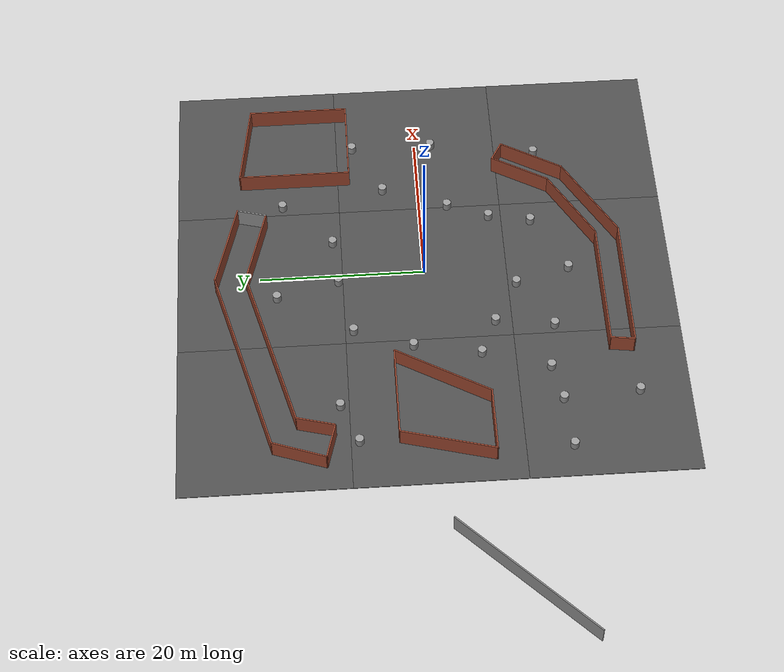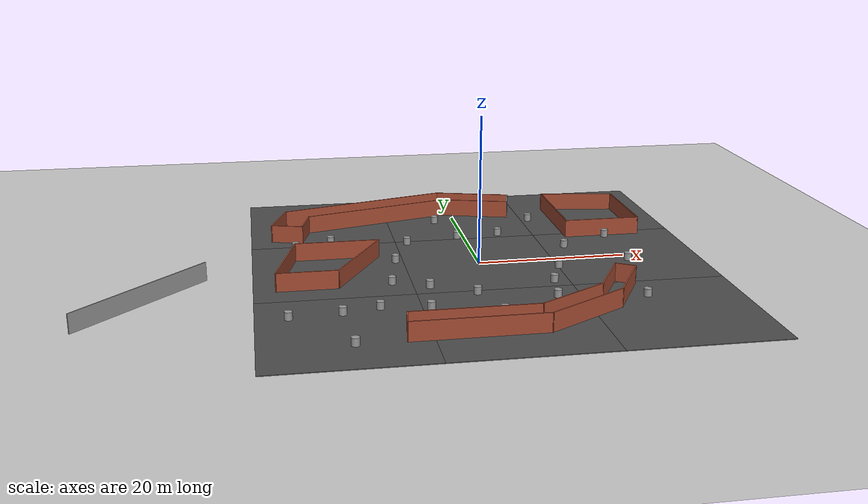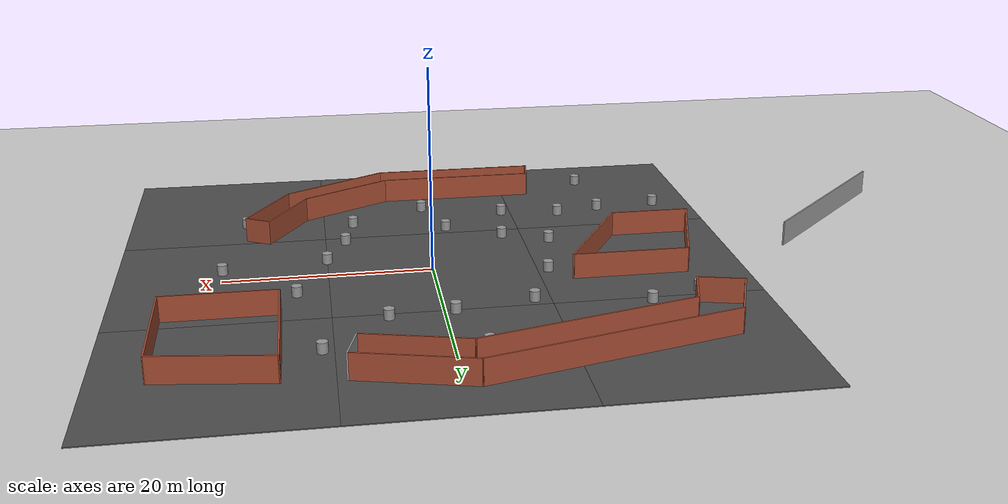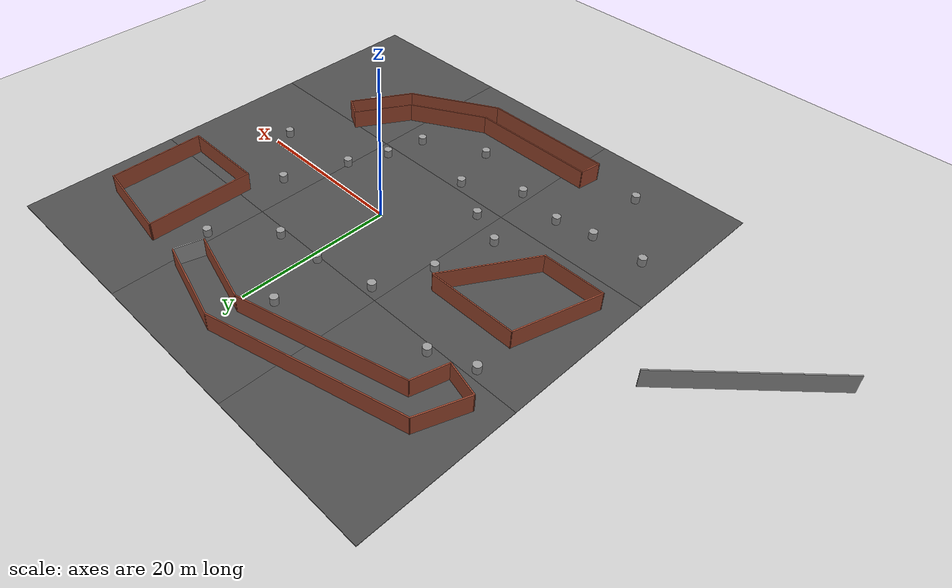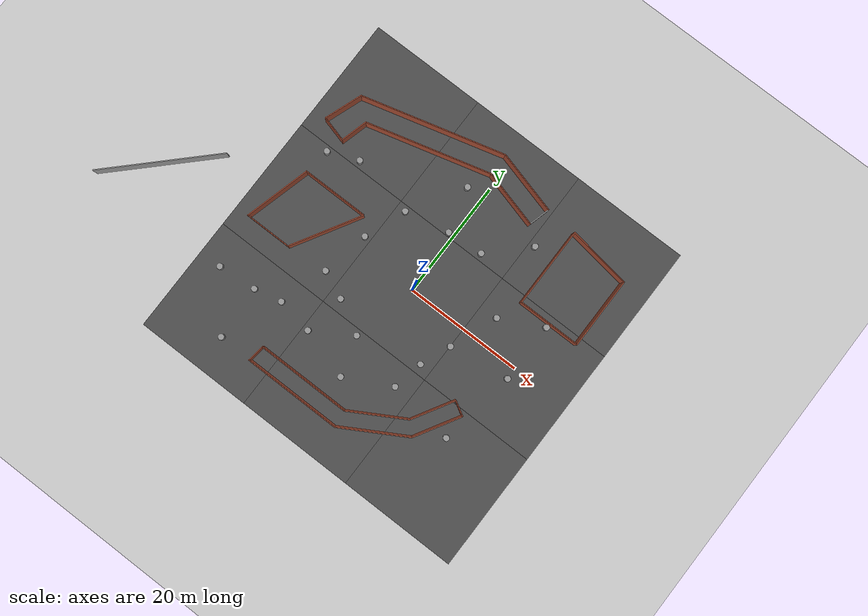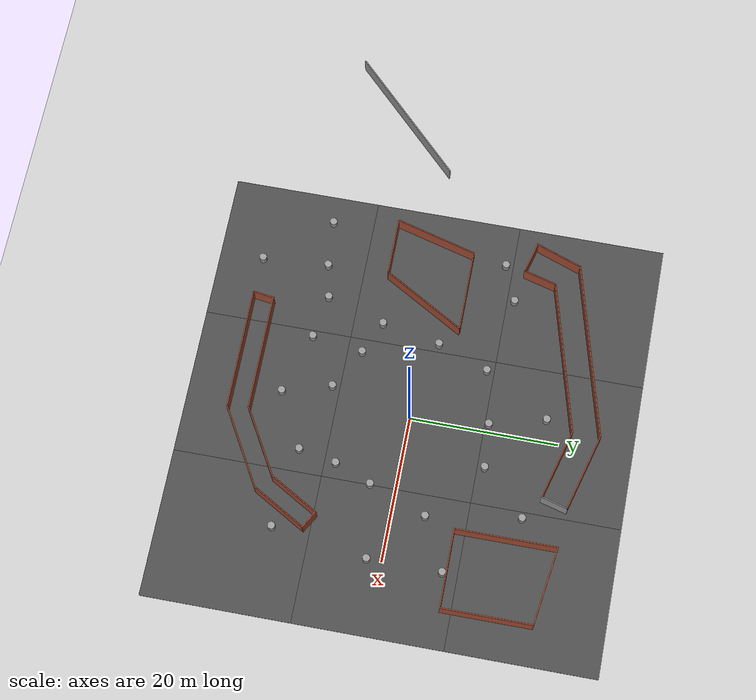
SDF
<sdf version="1.7">
 <world name="default">
  <scene><ambient>0.4 0.4 0.4 1</ambient><background>0.7 0.7 0.7 1</background><shadows>1</shadows></scene>
  <light name="sun" type="directional">
   <pose>0 0 10 0 -0 0</pose>
   <diffuse>0.8 0.8 0.8 1</diffuse>
   <specular>0.2 0.2 0.2 1</specular>
   <attenuation>
    <range>1000</range>
    <constant>0.9</constant>
    <linear>0.01</linear>
    <quadratic>0.001</quadratic>
   </attenuation>
   <direction>-0.5 0.1 -0.9</direction>
   <spot><inner_angle>0</inner_angle><outer_angle>0</outer_angle><falloff>0</falloff></spot>
  </light>
  <model name="ground_plane">
   <static>1</static>
   <link name="link">
    <collision name="collision">
     <geometry><plane><normal>0 0 1</normal><size>100 100</size></plane></geometry>
     <surface>
      <contact><collide_bitmask>65535</collide_bitmask></contact>
      <friction><ode><mu>100</mu><mu2>50</mu2></ode></friction>
     </surface>
    </collision>
    <visual name="visual">
     <cast_shadows>0</cast_shadows>
     <geometry><plane><normal>0 0 1</normal><size>100 100</size></plane></geometry>
     <material>
      <script><uri>file://media/materials/scripts/gazebo.material</uri><name>Gazebo/Grey</name></script>
     </material>
    </visual>
   </link>
  </model>
  <physics type="ode">
   <real_time_update_rate>5000</real_time_update_rate>
   <max_step_size>0.002</max_step_size>
   <real_time_factor>10</real_time_factor>
   <ode>
    <solver>
     <type>quick</type>
     <iters>150</iters>
     <precon_iters>0</precon_iters>
     <sor>1.4</sor>
     <use_dynamic_moi_rescaling>1</use_dynamic_moi_rescaling>
    </solver>
    <constraints>
     <cfm>1e-05</cfm>
     <erp>0.2</erp>
     <contact_max_correcting_vel>2000</contact_max_correcting_vel>
     <contact_surface_layer>0.01</contact_surface_layer>
    </constraints>
   </ode>
  </physics>
  <gravity>0 0 -9.8</gravity>
  <magnetic_field>6e-06 2.3e-05 -4.2e-05</magnetic_field>
  <atmosphere type="adiabatic"/>
  <spherical_coordinates>
   <surface_model>EARTH_WGS84</surface_model>
   <latitude_deg>0</latitude_deg>
   <longitude_deg>0</longitude_deg>
   <elevation>0</elevation>
   <heading_deg>0</heading_deg>
  </spherical_coordinates>
  <model name="asphalt_plane">
   <static>1</static>
   <link name="link">
    <collision name="collision"><geometry><box><size>20 20 0.1</size></box></geometry></collision>
    <visual name="visual">
     <cast_shadows>0</cast_shadows>
     <geometry><box><size>20 20 0.1</size></box></geometry>
     <material>
      <script>
       <uri>model://asphalt_plane/materials/scripts</uri>
       <uri>model://asphalt_plane/materials/textures</uri>
       <name>vrc/asphalt</name>
      </script>
     </material>
    </visual>
   </link>
  </model>
  <model name="asphalt_plane_clone">
   <static>1</static>
   <link name="link">
    <collision name="collision"><geometry><box><size>20 20 0.1</size></box></geometry></collision>
    <visual name="visual">
     <cast_shadows>0</cast_shadows>
     <geometry><box><size>20 20 0.1</size></box></geometry>
     <material>
      <script>
       <uri>model://asphalt_plane/materials/scripts</uri>
       <uri>model://asphalt_plane/materials/textures</uri>
       <name>vrc/asphalt</name>
      </script>
     </material>
    </visual>
   </link>
   <pose>20 0 0 0 -0 0</pose>
  </model>
  <model name="asphalt_plane_clone_0">
   <static>1</static>
   <link name="link">
    <collision name="collision"><geometry><box><size>20 20 0.1</size></box></geometry></collision>
    <visual name="visual">
     <cast_shadows>0</cast_shadows>
     <geometry><box><size>20 20 0.1</size></box></geometry>
     <material>
      <script>
       <uri>model://asphalt_plane/materials/scripts</uri>
       <uri>model://asphalt_plane/materials/textures</uri>
       <name>vrc/asphalt</name>
      </script>
     </material>
    </visual>
   </link>
   <pose>20 -20 0 0 -0 0</pose>
  </model>
  <model name="asphalt_plane_clone_1">
   <static>1</static>
   <link name="link">
    <collision name="collision"><geometry><box><size>20 20 0.1</size></box></geometry></collision>
    <visual name="visual">
     <cast_shadows>0</cast_shadows>
     <geometry><box><size>20 20 0.1</size></box></geometry>
     <material>
      <script>
       <uri>model://asphalt_plane/materials/scripts</uri>
       <uri>model://asphalt_plane/materials/textures</uri>
       <name>vrc/asphalt</name>
      </script>
     </material>
    </visual>
   </link>
   <pose>0 -20 0 0 -0 0</pose>
  </model>
  <model name="asphalt_plane_clone_2">
   <static>1</static>
   <link name="link">
    <collision name="collision"><geometry><box><size>20 20 0.1</size></box></geometry></collision>
    <visual name="visual">
     <cast_shadows>0</cast_shadows>
     <geometry><box><size>20 20 0.1</size></box></geometry>
     <material>
      <script>
       <uri>model://asphalt_plane/materials/scripts</uri>
       <uri>model://asphalt_plane/materials/textures</uri>
       <name>vrc/asphalt</name>
      </script>
     </material>
    </visual>
   </link>
   <pose>-20 -20 0 0 -0 0</pose>
  </model>
  <model name="asphalt_plane_clone_3">
   <static>1</static>
   <link name="link">
    <collision name="collision"><geometry><box><size>20 20 0.1</size></box></geometry></collision>
    <visual name="visual">
     <cast_shadows>0</cast_shadows>
     <geometry><box><size>20 20 0.1</size></box></geometry>
     <material>
      <script>
       <uri>model://asphalt_plane/materials/scripts</uri>
       <uri>model://asphalt_plane/materials/textures</uri>
       <name>vrc/asphalt</name>
      </script>
     </material>
    </visual>
   </link>
   <pose>-20 0 0 0 -0 0</pose>
  </model>
  <model name="asphalt_plane_clone_4">
   <static>1</static>
   <link name="link">
    <collision name="collision"><geometry><box><size>20 20 0.1</size></box></geometry></collision>
    <visual name="visual">
     <cast_shadows>0</cast_shadows>
     <geometry><box><size>20 20 0.1</size></box></geometry>
     <material>
      <script>
       <uri>model://asphalt_plane/materials/scripts</uri>
       <uri>model://asphalt_plane/materials/textures</uri>
       <name>vrc/asphalt</name>
      </script>
     </material>
    </visual>
   </link>
   <pose>-20 20 0 0 -0 0</pose>
  </model>
  <model name="asphalt_plane_clone_5">
   <static>1</static>
   <link name="link">
    <collision name="collision"><geometry><box><size>20 20 0.1</size></box></geometry></collision>
    <visual name="visual">
     <cast_shadows>0</cast_shadows>
     <geometry><box><size>20 20 0.1</size></box></geometry>
     <material>
      <script>
       <uri>model://asphalt_plane/materials/scripts</uri>
       <uri>model://asphalt_plane/materials/textures</uri>
       <name>vrc/asphalt</name>
      </script>
     </material>
    </visual>
   </link>
   <pose>0 20 0 0 -0 0</pose>
  </model>
  <model name="asphalt_plane_clone_6">
   <static>1</static>
   <link name="link">
    <collision name="collision"><geometry><box><size>20 20 0.1</size></box></geometry></collision>
    <visual name="visual">
     <cast_shadows>0</cast_shadows>
     <geometry><box><size>20 20 0.1</size></box></geometry>
     <material>
      <script>
       <uri>model://asphalt_plane/materials/scripts</uri>
       <uri>model://asphalt_plane/materials/textures</uri>
       <name>vrc/asphalt</name>
      </script>
     </material>
    </visual>
   </link>
   <pose>20 20 0 0 -0 0</pose>
  </model>
  <light name="user_directional_light_0" type="directional">
   <pose>0 0 1 0 -0 0</pose>
   <diffuse>0.5 0.5 0.5 1</diffuse>
   <specular>0.1 0.1 0.1 1</specular>
   <direction>0.1 0.1 -0.9</direction>
   <attenuation>
    <range>20</range>
    <constant>0.5</constant>
    <linear>0.01</linear>
    <quadratic>0.001</quadratic>
   </attenuation>
   <spot><inner_angle>0</inner_angle><outer_angle>0</outer_angle><falloff>0</falloff></spot>
  </light>
  <model name="wall">
   <pose>-12.7819 0.65895 0 0 -0 0</pose>
   <link name="Wall_12">
    <collision name="Wall_12_Collision">
     <geometry><box><size>16.75 0.15 2.5</size></box></geometry>
     <pose>0 0 1.25 0 -0 0</pose>
    </collision>
    <visual name="Wall_12_Visual">
     <pose>0 0 1.25 0 -0 0</pose>
     <geometry><box><size>16.75 0.15 2.5</size></box></geometry>
     <material>
      <script><uri>file://media/materials/scripts/gazebo.material</uri><name>Gazebo/Bricks</name></script>
      <ambient>1 1 1 1</ambient>
     </material>
     <meta><layer>0</layer></meta>
    </visual>
    <pose>7.88361 -24.6458 0 0 -0 0</pose>
   </link>
   <link name="Wall_13">
    <collision name="Wall_13_Collision">
     <geometry><box><size>12 0.15 2.5</size></box></geometry>
     <pose>0 0 1.25 0 -0 0</pose>
    </collision>
    <visual name="Wall_13_Visual">
     <pose>0 0 1.25 0 -0 0</pose>
     <geometry><box><size>12 0.15 2.5</size></box></geometry>
     <material>
      <script><uri>file://media/materials/scripts/gazebo.material</uri><name>Gazebo/Bricks</name></script>
      <ambient>1 1 1 1</ambient>
     </material>
     <meta><layer>0</layer></meta>
    </visual>
    <pose>21.3148 -21.6833 0 0 -0 0.523599</pose>
   </link>
   <link name="Wall_14">
    <collision name="Wall_14_Collision">
     <geometry><box><size>8.5 0.15 2.5</size></box></geometry>
     <pose>0 0 1.25 0 -0 0</pose>
    </collision>
    <visual name="Wall_14_Visual">
     <pose>0 0 1.25 0 -0 0</pose>
     <geometry><box><size>8.5 0.15 2.5</size></box></geometry>
     <material>
      <script><uri>file://media/materials/scripts/gazebo.material</uri><name>Gazebo/Bricks</name></script>
      <ambient>1 1 1 1</ambient>
     </material>
     <meta><layer>0</layer></meta>
    </visual>
    <pose>28.5335 -15.1052 0 0 -0 1.0472</pose>
   </link>
   <link name="Wall_15">
    <collision name="Wall_15_Collision">
     <geometry><box><size>2.75 0.15 2.5</size></box></geometry>
     <pose>0 0 1.25 0 -0 0</pose>
    </collision>
    <visual name="Wall_15_Visual">
     <pose>0 0 1.25 0 -0 0</pose>
     <geometry><box><size>2.75 0.15 2.5</size></box></geometry>
     <material>
      <script><uri>file://media/materials/scripts/gazebo.material</uri><name>Gazebo/Bricks</name></script>
      <ambient>1 1 1 1</ambient>
     </material>
     <meta><layer>0</layer></meta>
    </visual>
    <pose>29.4952 -10.8395 0 0 -0 2.61799</pose>
   </link>
   <link name="Wall_16">
    <collision name="Wall_16_Collision">
     <geometry><box><size>7.75 0.15 2.5</size></box></geometry>
     <pose>0 0 1.25 0 -0 0</pose>
    </collision>
    <visual name="Wall_16_Visual">
     <pose>0 0 1.25 0 -0 0</pose>
     <geometry><box><size>7.75 0.15 2.5</size></box></geometry>
     <material>
      <script><uri>file://media/materials/scripts/gazebo.material</uri><name>Gazebo/Bricks</name></script>
      <ambient>1 1 1 1</ambient>
     </material>
     <meta><layer>0</layer></meta>
    </visual>
    <pose>26.4693 -13.4804 0 0 -0 -2.0944</pose>
   </link>
   <link name="Wall_17">
    <collision name="Wall_17_Collision">
     <geometry><box><size>10.25 0.15 2.5</size></box></geometry>
     <pose>0 0 1.25 0 -0 0</pose>
    </collision>
    <visual name="Wall_17_Visual">
     <pose>0 0 1.25 0 -0 0</pose>
     <geometry><box><size>10.25 0.15 2.5</size></box></geometry>
     <material>
      <script><uri>file://media/materials/scripts/gazebo.material</uri><name>Gazebo/Bricks</name></script>
      <ambient>1 1 1 1</ambient>
     </material>
     <meta><layer>0</layer></meta>
    </visual>
    <pose>20.1959 -19.2963 0 0 -0 -2.61799</pose>
   </link>
   <link name="Wall_18">
    <collision name="Wall_18_Collision">
     <geometry><box><size>16 0.15 2.5</size></box></geometry>
     <pose>0 0 1.25 0 -0 0</pose>
    </collision>
    <visual name="Wall_18_Visual">
     <pose>0 0 1.25 0 -0 0</pose>
     <geometry><box><size>16 0.15 2.5</size></box></geometry>
     <material>
      <script><uri>file://media/materials/scripts/gazebo.material</uri><name>Gazebo/Bricks</name></script>
      <ambient>1 1 1 1</ambient>
     </material>
     <meta><layer>0</layer></meta>
    </visual>
    <pose>7.89749 -21.8213 0 0 -0 3.14159</pose>
   </link>
   <link name="Wall_19">
    <collision name="Wall_19_Collision">
     <geometry><box><size>3.00116 0.15 2.5</size></box></geometry>
     <pose>0 0 1.25 0 -0 0</pose>
    </collision>
    <visual name="Wall_19_Visual">
     <pose>0 0 1.25 0 -0 0</pose>
     <geometry><box><size>3.00116 0.15 2.5</size></box></geometry>
     <material>
      <script><uri>file://media/materials/scripts/gazebo.material</uri><name>Gazebo/Bricks</name></script>
      <ambient>1 1 1 1</ambient>
     </material>
     <meta><layer>0</layer></meta>
    </visual>
    <pose>-0.221951 -23.2336 0 0 -0 -1.70762</pose>
   </link>
   <link name="Wall_21">
    <collision name="Wall_21_Collision">
     <geometry><box><size>13.75 0.15 2.5</size></box></geometry>
     <pose>0 0 1.25 0 -0 0</pose>
    </collision>
    <visual name="Wall_21_Visual">
     <pose>0 0 1.25 0 -0 0</pose>
     <geometry><box><size>13.75 0.15 2.5</size></box></geometry>
     <material>
      <script><uri>file://media/materials/scripts/gazebo.material</uri><name>Gazebo/Bricks</name></script>
      <ambient>1 1 1 1</ambient>
     </material>
     <meta><layer>0</layer></meta>
    </visual>
    <pose>27.2512 14.7033 0 0 -0 -1.5708</pose>
   </link>
   <link name="Wall_22">
    <collision name="Wall_22_Collision">
     <geometry><box><size>10.75 0.15 2.5</size></box></geometry>
     <pose>0 0 1.25 0 -0 0</pose>
    </collision>
    <visual name="Wall_22_Visual">
     <pose>0 0 1.25 0 -0 0</pose>
     <geometry><box><size>10.75 0.15 2.5</size></box></geometry>
     <material>
      <script><uri>file://media/materials/scripts/gazebo.material</uri><name>Gazebo/Bricks</name></script>
      <ambient>1 1 1 1</ambient>
     </material>
     <meta><layer>0</layer></meta>
    </visual>
    <pose>32.5512 7.90329 0 0 -0 0</pose>
   </link>
   <link name="Wall_23">
    <collision name="Wall_23_Collision">
     <geometry><box><size>12.25 0.15 2.5</size></box></geometry>
     <pose>0 0 1.25 0 -0 0</pose>
    </collision>
    <visual name="Wall_23_Visual">
     <pose>0 0 1.25 0 -0 0</pose>
     <geometry><box><size>12.25 0.15 2.5</size></box></geometry>
     <material>
      <script><uri>file://media/materials/scripts/gazebo.material</uri><name>Gazebo/Bricks</name></script>
      <ambient>1 1 1 1</ambient>
     </material>
     <meta><layer>0</layer></meta>
    </visual>
    <pose>37.8512 13.9533 0 0 -0 1.5708</pose>
   </link>
   <link name="Wall_24">
    <collision name="Wall_24_Collision">
     <geometry><box><size>10.8556 0.15 2.5</size></box></geometry>
     <pose>0 0 1.25 0 -0 0</pose>
    </collision>
    <visual name="Wall_24_Visual">
     <pose>0 0 1.25 0 -0 0</pose>
     <geometry><box><size>10.8556 0.15 2.5</size></box></geometry>
     <material>
      <script><uri>file://media/materials/scripts/gazebo.material</uri><name>Gazebo/Bricks</name></script>
      <ambient>1 1 1 1</ambient>
     </material>
     <meta><layer>0</layer></meta>
    </visual>
    <pose>32.5512 20.7533 0 0 -0 3.00102</pose>
   </link>
   <link name="Wall_26">
    <collision name="Wall_26_Collision">
     <geometry><box><size>24.5 0.15 2.5</size></box></geometry>
     <pose>0 0 1.25 0 -0 0</pose>
    </collision>
    <visual name="Wall_26_Visual">
     <pose>0 0 1.25 0 -0 0</pose>
     <geometry><box><size>24.5 0.15 2.5</size></box></geometry>
     <material>
      <script><uri>file://media/materials/scripts/gazebo.material</uri><name>Gazebo/Bricks</name></script>
      <ambient>1 1 1 1</ambient>
     </material>
     <meta><layer>0</layer></meta>
    </visual>
    <pose>-0.332914 21.5053 0 0 -0 0.261799</pose>
   </link>
   <link name="Wall_27">
    <collision name="Wall_27_Collision">
     <geometry><box><size>11 0.15 2.5</size></box></geometry>
     <pose>0 0 1.25 0 -0 0</pose>
    </collision>
    <visual name="Wall_27_Visual">
     <pose>0 0 1.25 0 -0 0</pose>
     <geometry><box><size>11 0.15 2.5</size></box></geometry>
     <material>
      <script><uri>file://media/materials/scripts/gazebo.material</uri><name>Gazebo/Bricks</name></script>
      <ambient>1 1 1 1</ambient>
     </material>
     <meta><layer>0</layer></meta>
    </visual>
    <pose>16.6674 23.2523 0 0 -0 -0.261799</pose>
   </link>
   <link name="Wall_28">
    <collision name="Wall_28_Collision">
     <geometry><box><size>3.75 0.15 2.5</size></box></geometry>
     <pose>0 0 1.25 0 -0 0</pose>
    </collision>
    <visual name="Wall_28_Visual">
     <pose>0 0 1.25 0 -0 0</pose>
     <geometry><box><size>3.75 0.15 2.5</size></box></geometry>
     <material>
      <script><uri>file://media/materials/scripts/gazebo.material</uri><name>Gazebo/Grey</name></script>
      <ambient>1 1 1 1</ambient>
     </material>
     <meta><layer>0</layer></meta>
    </visual>
    <pose>21.4417 20.1096 0 0 -0 -1.8326</pose>
   </link>
   <link name="Wall_29">
    <collision name="Wall_29_Collision">
     <geometry><box><size>10 0.15 2.5</size></box></geometry>
     <pose>0 0 1.25 0 -0 0</pose>
    </collision>
    <visual name="Wall_29_Visual">
     <pose>0 0 1.25 0 -0 0</pose>
     <geometry><box><size>10 0.15 2.5</size></box></geometry>
     <material>
      <script><uri>file://media/materials/scripts/gazebo.material</uri><name>Gazebo/Bricks</name></script>
      <ambient>1 1 1 1</ambient>
     </material>
     <meta><layer>0</layer></meta>
    </visual>
    <pose>16.2186 19.6456 0 0 -0 2.87979</pose>
   </link>
   <link name="Wall_3">
    <collision name="Wall_3_Collision">
     <geometry><box><size>21 0.15 2.5</size></box></geometry>
     <pose>0 0 1.25 0 -0 0</pose>
    </collision>
    <visual name="Wall_3_Visual">
     <pose>0 0 1.25 0 -0 0</pose>
     <geometry><box><size>21 0.15 2.5</size></box></geometry>
     <material>
      <script><uri>file://media/materials/scripts/gazebo.material</uri><name>Gazebo/Grey</name></script>
      <ambient>1 1 1 1</ambient>
     </material>
     <meta><layer>0</layer></meta>
    </visual>
    <pose>-30.4583 -9.04637 0 0 -0 0.785398</pose>
   </link>
   <link name="Wall_30">
    <collision name="Wall_30_Collision">
     <geometry><box><size>21.25 0.15 2.5</size></box></geometry>
     <pose>0 0 1.25 0 -0 0</pose>
    </collision>
    <visual name="Wall_30_Visual">
     <pose>0 0 1.25 0 -0 0</pose>
     <geometry><box><size>21.25 0.15 2.5</size></box></geometry>
     <material>
      <script><uri>file://media/materials/scripts/gazebo.material</uri><name>Gazebo/Bricks</name></script>
      <ambient>1 1 1 1</ambient>
     </material>
     <meta><layer>0</layer></meta>
    </visual>
    <pose>1.27089 18.1897 0 0 -0 -2.87979</pose>
   </link>
   <link name="Wall_31">
    <collision name="Wall_31_Collision">
     <geometry><box><size>4.75 0.15 2.5</size></box></geometry>
     <pose>0 0 1.25 0 -0 0</pose>
    </collision>
    <visual name="Wall_31_Visual">
     <pose>0 0 1.25 0 -0 0</pose>
     <geometry><box><size>4.75 0.15 2.5</size></box></geometry>
     <material>
      <script><uri>file://media/materials/scripts/gazebo.material</uri><name>Gazebo/Bricks</name></script>
      <ambient>1 1 1 1</ambient>
     </material>
     <meta><layer>0</layer></meta>
    </visual>
    <pose>-9.51491 13.2375 0 0 -0 -1.8326</pose>
   </link>
   <link name="Wall_32">
    <collision name="Wall_32_Collision">
     <geometry><box><size>4.5 0.15 2.5</size></box></geometry>
     <pose>0 0 1.25 0 -0 0</pose>
    </collision>
    <visual name="Wall_32_Visual">
     <pose>0 0 1.25 0 -0 0</pose>
     <geometry><box><size>4.5 0.15 2.5</size></box></geometry>
     <material>
      <script><uri>file://media/materials/scripts/gazebo.material</uri><name>Gazebo/Bricks</name></script>
      <ambient>1 1 1 1</ambient>
     </material>
     <meta><layer>0</layer></meta>
    </visual>
    <pose>-12.2111 11.5788 0 0 -0 2.87979</pose>
   </link>
   <link name="Wall_33">
    <collision name="Wall_33_Collision">
     <geometry><box><size>6.74676 0.15 2.5</size></box></geometry>
     <pose>0 0 1.25 0 -0 0</pose>
    </collision>
    <visual name="Wall_33_Visual">
     <pose>0 0 1.25 0 -0 0</pose>
     <geometry><box><size>6.74676 0.15 2.5</size></box></geometry>
     <material>
      <script><uri>file://media/materials/scripts/gazebo.material</uri><name>Gazebo/Bricks</name></script>
      <ambient>1 1 1 1</ambient>
     </material>
     <meta><layer>0</layer></meta>
    </visual>
    <pose>-13.2025 15.248 0 0 -0 1.22774</pose>
   </link>
   <link name="Wall_5">
    <collision name="Wall_5_Collision">
     <geometry><box><size>12.75 0.15 2.5</size></box></geometry>
     <pose>0 0 1.25 0 -0 0</pose>
    </collision>
    <visual name="Wall_5_Visual">
     <pose>0 0 1.25 0 -0 0</pose>
     <geometry><box><size>12.75 0.15 2.5</size></box></geometry>
     <material>
      <script><uri>file://media/materials/scripts/gazebo.material</uri><name>Gazebo/Bricks</name></script>
      <ambient>1 1 1 1</ambient>
     </material>
     <meta><layer>0</layer></meta>
    </visual>
    <pose>-3.38723 -1.77271 0 0 -0 -2.0944</pose>
   </link>
   <link name="Wall_6">
    <collision name="Wall_6_Collision">
     <geometry><box><size>8 0.15 2.5</size></box></geometry>
     <pose>0 0 1.25 0 -0 0</pose>
    </collision>
    <visual name="Wall_6_Visual">
     <pose>0 0 1.25 0 -0 0</pose>
     <geometry><box><size>8 0.15 2.5</size></box></geometry>
     <material>
      <script><uri>file://media/materials/scripts/gazebo.material</uri><name>Gazebo/Bricks</name></script>
      <ambient>1 1 1 1</ambient>
     </material>
     <meta><layer>0</layer></meta>
    </visual>
    <pose>-10.4622 -7.22867 0 0 -0 3.14159</pose>
   </link>
   <link name="Wall_7">
    <collision name="Wall_7_Collision">
     <geometry><box><size>11.5 0.15 2.5</size></box></geometry>
     <pose>0 0 1.25 0 -0 0</pose>
    </collision>
    <visual name="Wall_7_Visual">
     <pose>0 0 1.25 0 -0 0</pose>
     <geometry><box><size>11.5 0.15 2.5</size></box></geometry>
     <material>
      <script><uri>file://media/materials/scripts/gazebo.material</uri><name>Gazebo/Bricks</name></script>
      <ambient>1 1 1 1</ambient>
     </material>
     <meta><layer>0</layer></meta>
    </visual>
    <pose>-12.9184 -1.74704 0 0 -0 1.309</pose>
   </link>
   <link name="Wall_8">
    <collision name="Wall_8_Collision">
     <geometry><box><size>11.25 0.15 2.5</size></box></geometry>
     <pose>0 0 1.25 0 -0 0</pose>
    </collision>
    <visual name="Wall_8_Visual">
     <pose>0 0 1.25 0 -0 0</pose>
     <geometry><box><size>11.25 0.15 2.5</size></box></geometry>
     <material>
      <script><uri>file://media/materials/scripts/gazebo.material</uri><name>Gazebo/Bricks</name></script>
      <ambient>1 1 1 1</ambient>
     </material>
     <meta><layer>0</layer></meta>
    </visual>
    <pose>-5.89963 3.73459 0 0 -0 0</pose>
   </link>
   <static>1</static>
  </model>
  <model name="unit_cylinder">
   <pose>-12.5409 -6 0.55 0 -0 0</pose>
   <link name="link">
    <inertial>
     <mass>1</mass>
     <inertia><ixx>0.145833</ixx><ixy>0</ixy><ixz>0</ixz><iyy>0.145833</iyy><iyz>0</iyz><izz>0.125</izz></inertia>
    </inertial>
    <collision name="collision">
     <geometry><cylinder><radius>0.5</radius><length>1</length></cylinder></geometry>
    </collision>
    <visual name="visual">
     <geometry><cylinder><radius>0.5</radius><length>1</length></cylinder></geometry>
     <material>
      <script><name>Gazebo/Grey</name><uri>file://media/materials/scripts/gazebo.material</uri></script>
     </material>
    </visual>
   </link>
  </model>
  <model name="unit_cylinder_clone">
   <pose>-9 -15 0.55 0 -0 0</pose>
   <link name="link">
    <inertial>
     <mass>1</mass>
     <inertia><ixx>0.145833</ixx><ixy>0</ixy><ixz>0</ixz><iyy>0.145833</iyy><iyz>0</iyz><izz>0.125</izz></inertia>
    </inertial>
    <collision name="collision">
     <geometry><cylinder><radius>0.5</radius><length>1</length></cylinder></geometry>
    </collision>
    <visual name="visual">
     <geometry><cylinder><radius>0.5</radius><length>1</length></cylinder></geometry>
     <material>
      <script><name>Gazebo/Grey</name><uri>file://media/materials/scripts/gazebo.material</uri></script>
     </material>
    </visual>
   </link>
  </model>
  <model name="unit_cylinder_clone_0">
   <pose>-19.5921 -15 0.549961 0 -0 0</pose>
   <link name="link">
    <inertial>
     <mass>1</mass>
     <inertia><ixx>0.145833</ixx><ixy>0</ixy><ixz>0</ixz><iyy>0.145833</iyy><iyz>0</iyz><izz>0.125</izz></inertia>
    </inertial>
    <collision name="collision">
     <geometry><cylinder><radius>0.5</radius><length>1</length></cylinder></geometry>
    </collision>
    <visual name="visual">
     <geometry><cylinder><radius>0.5</radius><length>1</length></cylinder></geometry>
     <material>
      <script><name>Gazebo/Grey</name><uri>file://media/materials/scripts/gazebo.material</uri></script>
     </material>
    </visual>
   </link>
  </model>
  <model name="unit_cylinder_clone_1">
   <pose>7.00007 -13.5939 0.549993 7e-06 2.3e-05 0</pose>
   <link name="link">
    <inertial>
     <mass>1</mass>
     <inertia><ixx>0.145833</ixx><ixy>0</ixy><ixz>0</ixz><iyy>0.145833</iyy><iyz>0</iyz><izz>0.125</izz></inertia>
    </inertial>
    <collision name="collision">
     <geometry><cylinder><radius>0.5</radius><length>1</length></cylinder></geometry>
    </collision>
    <visual name="visual">
     <geometry><cylinder><radius>0.5</radius><length>1</length></cylinder></geometry>
     <material>
      <script><name>Gazebo/Grey</name><uri>file://media/materials/scripts/gazebo.material</uri></script>
     </material>
    </visual>
   </link>
  </model>
  <model name="unit_cylinder_clone_2">
   <pose>10 -3.44642 0.549984 8e-06 -1e-06 -0</pose>
   <link name="link">
    <inertial>
     <mass>1</mass>
     <inertia><ixx>0.145833</ixx><ixy>0</ixy><ixz>0</ixz><iyy>0.145833</iyy><iyz>0</iyz><izz>0.125</izz></inertia>
    </inertial>
    <collision name="collision">
     <geometry><cylinder><radius>0.5</radius><length>1</length></cylinder></geometry>
    </collision>
    <visual name="visual">
     <geometry><cylinder><radius>0.5</radius><length>1</length></cylinder></geometry>
     <material>
      <script><name>Gazebo/Grey</name><uri>file://media/materials/scripts/gazebo.material</uri></script>
     </material>
    </visual>
   </link>
  </model>
  <model name="unit_cylinder_clone_3">
   <pose>-2.5216 -11 0.549961 0 -0 0</pose>
   <link name="link">
    <inertial>
     <mass>1</mass>
     <inertia><ixx>0.145833</ixx><ixy>0</ixy><ixz>0</ixz><iyy>0.145833</iyy><iyz>0</iyz><izz>0.125</izz></inertia>
    </inertial>
    <collision name="collision">
     <geometry><cylinder><radius>0.5</radius><length>1</length></cylinder></geometry>
    </collision>
    <visual name="visual">
     <geometry><cylinder><radius>0.5</radius><length>1</length></cylinder></geometry>
     <material>
      <script><name>Gazebo/Grey</name><uri>file://media/materials/scripts/gazebo.material</uri></script>
     </material>
    </visual>
   </link>
  </model>
  <model name="unit_cylinder_clone_4">
   <pose>-8.43587 9.00006 0.550004 -2e-06 -7e-06 0.00046</pose>
   <link name="link">
    <inertial>
     <mass>1</mass>
     <inertia><ixx>0.145833</ixx><ixy>0</ixy><ixz>0</ixz><iyy>0.145833</iyy><iyz>0</iyz><izz>0.125</izz></inertia>
    </inertial>
    <collision name="collision">
     <geometry><cylinder><radius>0.5</radius><length>1</length></cylinder></geometry>
    </collision>
    <visual name="visual">
     <geometry><cylinder><radius>0.5</radius><length>1</length></cylinder></geometry>
     <material>
      <script><name>Gazebo/Grey</name><uri>file://media/materials/scripts/gazebo.material</uri></script>
     </material>
    </visual>
   </link>
  </model>
  <model name="unit_cylinder_clone_5">
   <pose>4.99994 11 0.549998 3.3e-05 1.3e-05 -0.000154</pose>
   <link name="link">
    <inertial>
     <mass>1</mass>
     <inertia><ixx>0.145833</ixx><ixy>0</ixy><ixz>0</ixz><iyy>0.145833</iyy><iyz>0</iyz><izz>0.125</izz></inertia>
    </inertial>
    <collision name="collision">
     <geometry><cylinder><radius>0.5</radius><length>1</length></cylinder></geometry>
    </collision>
    <visual name="visual">
     <geometry><cylinder><radius>0.5</radius><length>1</length></cylinder></geometry>
     <material>
      <script><name>Gazebo/Grey</name><uri>file://media/materials/scripts/gazebo.material</uri></script>
     </material>
    </visual>
   </link>
  </model>
  <model name="unit_cylinder_clone_6">
   <pose>20 7.98724 0.549993 3e-06 2.6e-05 -2.3e-05</pose>
   <link name="link">
    <inertial>
     <mass>1</mass>
     <inertia><ixx>0.145833</ixx><ixy>0</ixy><ixz>0</ixz><iyy>0.145833</iyy><iyz>0</iyz><izz>0.125</izz></inertia>
    </inertial>
    <collision name="collision">
     <geometry><cylinder><radius>0.5</radius><length>1</length></cylinder></geometry>
    </collision>
    <visual name="visual">
     <geometry><cylinder><radius>0.5</radius><length>1</length></cylinder></geometry>
     <material>
      <script><name>Gazebo/Grey</name><uri>file://media/materials/scripts/gazebo.material</uri></script>
     </material>
    </visual>
   </link>
  </model>
  <model name="unit_cylinder_clone_7">
   <pose>20 -1.99999 0.550017 -1.1e-05 -3.2e-05 0.00023</pose>
   <link name="link">
    <inertial>
     <mass>1</mass>
     <inertia><ixx>0.145833</ixx><ixy>0</ixy><ixz>0</ixz><iyy>0.145833</iyy><iyz>0</iyz><izz>0.125</izz></inertia>
    </inertial>
    <collision name="collision">
     <geometry><cylinder><radius>0.5</radius><length>1</length></cylinder></geometry>
    </collision>
    <visual name="visual">
     <geometry><cylinder><radius>0.5</radius><length>1</length></cylinder></geometry>
     <material>
      <script><name>Gazebo/Grey</name><uri>file://media/materials/scripts/gazebo.material</uri></script>
     </material>
    </visual>
   </link>
  </model>
  <model name="unit_cylinder_clone_8">
   <pose>18 -15 0.55 0 -0 0</pose>
   <link name="link">
    <inertial>
     <mass>1</mass>
     <inertia><ixx>0.145833</ixx><ixy>0</ixy><ixz>0</ixz><iyy>0.145833</iyy><iyz>0</iyz><izz>0.125</izz></inertia>
    </inertial>
    <collision name="collision">
     <geometry><cylinder><radius>0.5</radius><length>1</length></cylinder></geometry>
    </collision>
    <visual name="visual">
     <geometry><cylinder><radius>0.5</radius><length>1</length></cylinder></geometry>
     <material>
      <script><name>Gazebo/Grey</name><uri>file://media/materials/scripts/gazebo.material</uri></script>
     </material>
    </visual>
   </link>
  </model>
  <model name="unit_cylinder_clone_9">
   <pose>13 4.45431 0.549995 2.7e-05 -1.3e-05 -5e-06</pose>
   <link name="link">
    <inertial>
     <mass>1</mass>
     <inertia><ixx>0.145833</ixx><ixy>0</ixy><ixz>0</ixz><iyy>0.145833</iyy><iyz>0</iyz><izz>0.125</izz></inertia>
    </inertial>
    <collision name="collision">
     <geometry><cylinder><radius>0.5</radius><length>1</length></cylinder></geometry>
    </collision>
    <visual name="visual">
     <geometry><cylinder><radius>0.5</radius><length>1</length></cylinder></geometry>
     <material>
      <script><name>Gazebo/Grey</name><uri>file://media/materials/scripts/gazebo.material</uri></script>
     </material>
    </visual>
   </link>
  </model>
  <model name="unit_cylinder_clone_10">
   <pose>-2.99995 18.0001 0.549985 -2.9e-05 -9e-06 4.1e-05</pose>
   <link name="link">
    <inertial>
     <mass>1</mass>
     <inertia><ixx>0.145833</ixx><ixy>0</ixy><ixz>0</ixz><iyy>0.145833</iyy><iyz>0</iyz><izz>0.125</izz></inertia>
    </inertial>
    <collision name="collision">
     <geometry><cylinder><radius>0.5</radius><length>1</length></cylinder></geometry>
    </collision>
    <visual name="visual">
     <geometry><cylinder><radius>0.5</radius><length>1</length></cylinder></geometry>
     <material>
      <script><name>Gazebo/Grey</name><uri>file://media/materials/scripts/gazebo.material</uri></script>
     </material>
    </visual>
   </link>
  </model>
  <model name="unit_cylinder_clone_11">
   <pose>11 17 0.549999 1.4e-05 3.4e-05 3.3e-05</pose>
   <link name="link">
    <inertial>
     <mass>1</mass>
     <inertia><ixx>0.145833</ixx><ixy>0</ixy><ixz>0</ixz><iyy>0.145833</iyy><iyz>0</iyz><izz>0.125</izz></inertia>
    </inertial>
    <collision name="collision">
     <geometry><cylinder><radius>0.5</radius><length>1</length></cylinder></geometry>
    </collision>
    <visual name="visual">
     <geometry><cylinder><radius>0.5</radius><length>1</length></cylinder></geometry>
     <material>
      <script><name>Gazebo/Grey</name><uri>file://media/materials/scripts/gazebo.material</uri></script>
     </material>
    </visual>
   </link>
  </model>
  <model name="unit_cylinder_clone_12">
   <pose>-19 11 0.549996 3e-05 6e-06 -3e-06</pose>
   <link name="link">
    <inertial>
     <mass>1</mass>
     <inertia><ixx>0.145833</ixx><ixy>0</ixy><ixz>0</ixz><iyy>0.145833</iyy><iyz>0</iyz><izz>0.125</izz></inertia>
    </inertial>
    <collision name="collision">
     <geometry><cylinder><radius>0.5</radius><length>1</length></cylinder></geometry>
    </collision>
    <visual name="visual">
     <geometry><cylinder><radius>0.5</radius><length>1</length></cylinder></geometry>
     <material>
      <script><name>Gazebo/Grey</name><uri>file://media/materials/scripts/gazebo.material</uri></script>
     </material>
    </visual>
   </link>
  </model>
  <model name="unit_cylinder_clone_13">
   <pose>-15 -14 0.549967 -3e-06 -1.2e-05 4.3e-05</pose>
   <link name="link">
    <inertial>
     <mass>1</mass>
     <inertia><ixx>0.145833</ixx><ixy>0</ixy><ixz>0</ixz><iyy>0.145833</iyy><iyz>0</iyz><izz>0.125</izz></inertia>
    </inertial>
    <collision name="collision">
     <geometry><cylinder><radius>0.5</radius><length>1</length></cylinder></geometry>
    </collision>
    <visual name="visual">
     <geometry><cylinder><radius>0.5</radius><length>1</length></cylinder></geometry>
     <material>
      <script><name>Gazebo/Grey</name><uri>file://media/materials/scripts/gazebo.material</uri></script>
     </material>
    </visual>
   </link>
  </model>
  <model name="unit_cylinder_clone_14">
   <pose>-11 2.00001 0.550005 -9e-06 -3e-06 -9.1e-05</pose>
   <link name="link">
    <inertial>
     <mass>1</mass>
     <inertia><ixx>0.145833</ixx><ixy>0</ixy><ixz>0</ixz><iyy>0.145833</iyy><iyz>0</iyz><izz>0.125</izz></inertia>
    </inertial>
    <collision name="collision">
     <geometry><cylinder><radius>0.5</radius><length>1</length></cylinder></geometry>
    </collision>
    <visual name="visual">
     <geometry><cylinder><radius>0.5</radius><length>1</length></cylinder></geometry>
     <material>
      <script><name>Gazebo/Grey</name><uri>file://media/materials/scripts/gazebo.material</uri></script>
     </material>
    </visual>
   </link>
  </model>
  <model name="unit_cylinder_clone_15">
   <pose>-0.584397 -17.5317 0.549961 -0 -0 -1.8e-05</pose>
   <link name="link">
    <inertial>
     <mass>1</mass>
     <inertia><ixx>0.145833</ixx><ixy>0</ixy><ixz>0</ixz><iyy>0.145833</iyy><iyz>0</iyz><izz>0.125</izz></inertia>
    </inertial>
    <collision name="collision">
     <geometry><cylinder><radius>0.5</radius><length>1</length></cylinder></geometry>
    </collision>
    <visual name="visual">
     <geometry><cylinder><radius>0.5</radius><length>1</length></cylinder></geometry>
     <material>
      <script><name>Gazebo/Grey</name><uri>file://media/materials/scripts/gazebo.material</uri></script>
     </material>
    </visual>
   </link>
  </model>
  <model name="unit_cylinder_clone_16">
   <pose>-19 -24 0.55 0 -0 0</pose>
   <link name="link">
    <inertial>
     <mass>1</mass>
     <inertia><ixx>0.145833</ixx><ixy>0</ixy><ixz>0</ixz><iyy>0.145833</iyy><iyz>0</iyz><izz>0.125</izz></inertia>
    </inertial>
    <collision name="collision">
     <geometry><cylinder><radius>0.5</radius><length>1</length></cylinder></geometry>
    </collision>
    <visual name="visual">
     <geometry><cylinder><radius>0.5</radius><length>1</length></cylinder></geometry>
     <material>
      <script><name>Gazebo/Grey</name><uri>file://media/materials/scripts/gazebo.material</uri></script>
     </material>
    </visual>
   </link>
  </model>
  <model name="unit_cylinder_clone_17">
   <pose>-26 -15.5329 0.549961 0 -0 0</pose>
   <link name="link">
    <inertial>
     <mass>1</mass>
     <inertia><ixx>0.145833</ixx><ixy>0</ixy><ixz>0</ixz><iyy>0.145833</iyy><iyz>0</iyz><izz>0.125</izz></inertia>
    </inertial>
    <collision name="collision">
     <geometry><cylinder><radius>0.5</radius><length>1</length></cylinder></geometry>
    </collision>
    <visual name="visual">
     <geometry><cylinder><radius>0.5</radius><length>1</length></cylinder></geometry>
     <material>
      <script><name>Gazebo/Grey</name><uri>file://media/materials/scripts/gazebo.material</uri></script>
     </material>
    </visual>
   </link>
  </model>
  <model name="unit_cylinder_clone_18">
   <pose>-24 9.00004 0.549995 2.7e-05 1.3e-05 3.8e-05</pose>
   <link name="link">
    <inertial>
     <mass>1</mass>
     <inertia><ixx>0.145833</ixx><ixy>0</ixy><ixz>0</ixz><iyy>0.145833</iyy><iyz>0</iyz><izz>0.125</izz></inertia>
    </inertial>
    <collision name="collision">
     <geometry><cylinder><radius>0.5</radius><length>1</length></cylinder></geometry>
    </collision>
    <visual name="visual">
     <geometry><cylinder><radius>0.5</radius><length>1</length></cylinder></geometry>
     <material>
      <script><name>Gazebo/Grey</name><uri>file://media/materials/scripts/gazebo.material</uri></script>
     </material>
    </visual>
   </link>
  </model>
  <model name="unit_cylinder_clone_19">
   <pose>-1.00001 10.5131 0.550003 2e-06 -6e-06 -0.000198</pose>
   <link name="link">
    <inertial>
     <mass>1</mass>
     <inertia><ixx>0.145833</ixx><ixy>0</ixy><ixz>0</ixz><iyy>0.145833</iyy><iyz>0</iyz><izz>0.125</izz></inertia>
    </inertial>
    <collision name="collision">
     <geometry><cylinder><radius>0.5</radius><length>1</length></cylinder></geometry>
    </collision>
    <visual name="visual">
     <geometry><cylinder><radius>0.5</radius><length>1</length></cylinder></geometry>
     <material>
      <script><name>Gazebo/Grey</name><uri>file://media/materials/scripts/gazebo.material</uri></script>
     </material>
    </visual>
   </link>
  </model>
  <model name="unit_cylinder_clone_20">
   <pose>8.00001 -8.46015 0.550012 -8e-06 2.2e-05 -0.000344</pose>
   <link name="link">
    <inertial>
     <mass>1</mass>
     <inertia><ixx>0.145833</ixx><ixy>0</ixy><ixz>0</ixz><iyy>0.145833</iyy><iyz>0</iyz><izz>0.125</izz></inertia>
    </inertial>
    <collision name="collision">
     <geometry><cylinder><radius>0.5</radius><length>1</length></cylinder></geometry>
    </collision>
    <visual name="visual">
     <geometry><cylinder><radius>0.5</radius><length>1</length></cylinder></geometry>
     <material>
      <script><name>Gazebo/Grey</name><uri>file://media/materials/scripts/gazebo.material</uri></script>
     </material>
    </visual>
   </link>
  </model>
  <model name="unit_cylinder_clone_21">
   <pose>-8 -8 0.550004 3e-06 -7e-06 -5e-06</pose>
   <link name="link">
    <inertial>
     <mass>1</mass>
     <inertia><ixx>0.145833</ixx><ixy>0</ixy><ixz>0</ixz><iyy>0.145833</iyy><iyz>0</iyz><izz>0.125</izz></inertia>
    </inertial>
    <collision name="collision">
     <geometry><cylinder><radius>0.5</radius><length>1</length></cylinder></geometry>
    </collision>
    <visual name="visual">
     <geometry><cylinder><radius>0.5</radius><length>1</length></cylinder></geometry>
     <material>
      <script><name>Gazebo/Grey</name><uri>file://media/materials/scripts/gazebo.material</uri></script>
     </material>
    </visual>
   </link>
  </model>
 </world>
</sdf>
